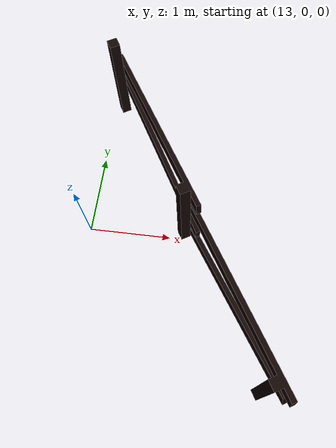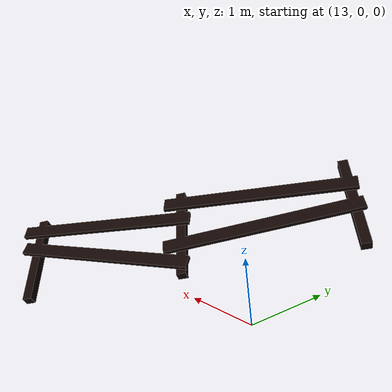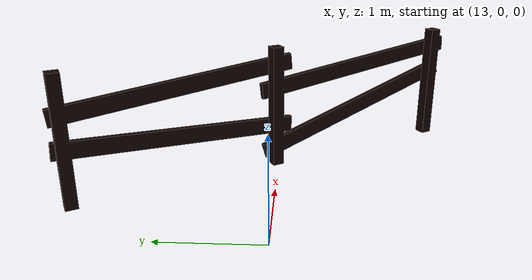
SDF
<sdf version="1.7">
<model name="fence_2">
    <static>true</static>
    <link name="fence_2">
        <pose>0 0 0 0 0 0</pose>
        <collision name="fence_2_collision">
            <geometry>
                <mesh>
                    <uri>model://fence_2/meshes/fence_2.dae</uri>
                </mesh>
            </geometry>
        </collision>
        <visual name="fence_2_visual">
            <geometry>
                <mesh>
                    <uri>model://fence_2/meshes/fence_2.dae</uri>
                </mesh>
            </geometry>
        </visual>
    </link>
</model>
</sdf>
